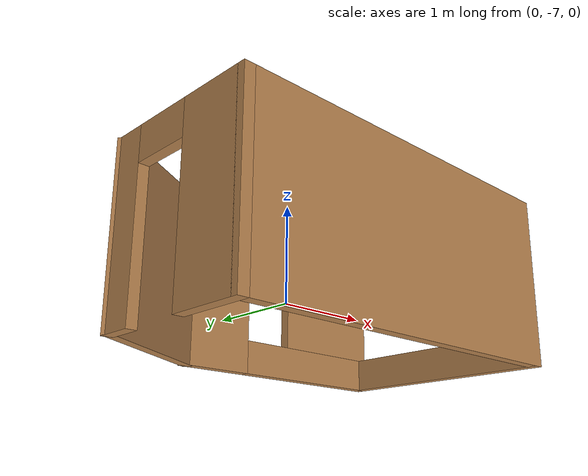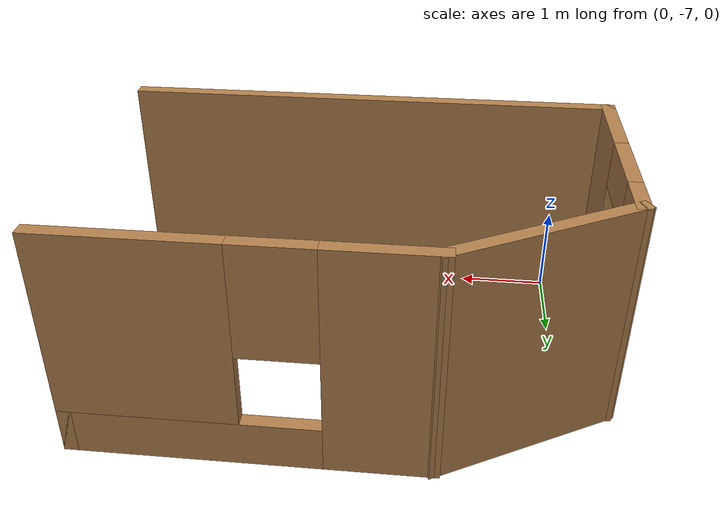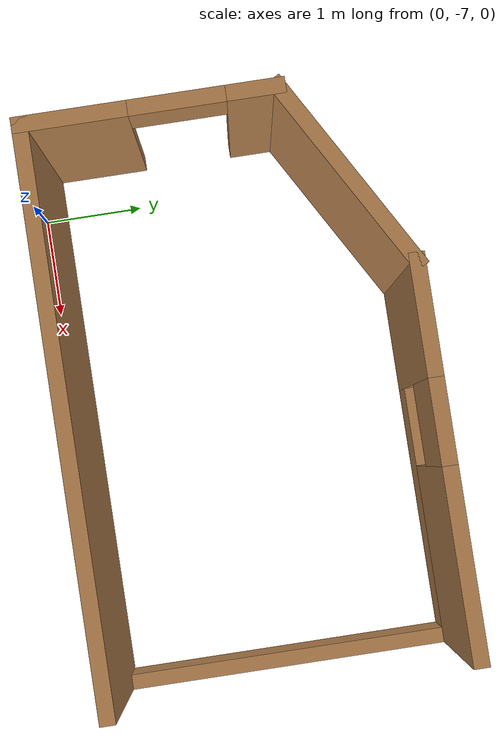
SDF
<?xml version='1.0'?>
<sdf version='1.7'>
  <model name='sample_world'>
    <pose>2.19134 -3.4625 0 0 -0 0</pose>
    <link name='Wall_5'>
      <pose>0.888664 -0.0375 0 0 -0 0</pose>
      <visual name='Wall_5_Visual_0'>
        <pose>-1.3075 0 1.25 0 -0 0</pose>
        <geometry>
          <box>
            <size>1.135 0.15 2.5</size>
          </box>
        </geometry>
        <material>
          <script>
            <uri>file://media/materials/scripts/gazebo.material</uri>
            <name>Gazebo/Wood</name>
          </script>
          <ambient>1 1 1 1</ambient>
        </material>
        <meta>
          <layer>0</layer>
        </meta>
      </visual>
      <collision name='Wall_5_Collision_0'>
        <geometry>
          <box>
            <size>1.135 0.15 2.5</size>
          </box>
        </geometry>
        <pose>-1.3075 0 1.25 0 -0 0</pose>
      </collision>
      <visual name='Wall_5_Visual_1'>
        <pose>0.5675 0 0.25 0 -0 0</pose>
        <geometry>
          <box>
            <size>2.615 0.15 0.5</size>
          </box>
        </geometry>
        <material>
          <script>
            <uri>file://media/materials/scripts/gazebo.material</uri>
            <name>Gazebo/Wood</name>
          </script>
          <ambient>1 1 1 1</ambient>
        </material>
        <meta>
          <layer>0</layer>
        </meta>
      </visual>
      <collision name='Wall_5_Collision_1'>
        <geometry>
          <box>
            <size>2.615 0.15 0.5</size>
          </box>
        </geometry>
        <pose>0.5675 0 0.25 0 -0 0</pose>
      </collision>
      <visual name='Wall_5_Visual_2'>
        <pose>0.9675 0 1.5 0 -0 0</pose>
        <geometry>
          <box>
            <size>1.815 0.15 2</size>
          </box>
        </geometry>
        <material>
          <script>
            <uri>file://media/materials/scripts/gazebo.material</uri>
            <name>Gazebo/Wood</name>
          </script>
          <ambient>1 1 1 1</ambient>
        </material>
        <meta>
          <layer>0</layer>
        </meta>
      </visual>
      <collision name='Wall_5_Collision_2'>
        <geometry>
          <box>
            <size>1.815 0.15 2</size>
          </box>
        </geometry>
        <pose>0.9675 0 1.5 0 -0 0</pose>
      </collision>
      <visual name='Wall_5_Visual_3'>
        <pose>-0.34 0 1.9 0 -0 0</pose>
        <geometry>
          <box>
            <size>0.8 0.15 1.2</size>
          </box>
        </geometry>
        <material>
          <script>
            <uri>file://media/materials/scripts/gazebo.material</uri>
            <name>Gazebo/Wood</name>
          </script>
          <ambient>1 1 1 1</ambient>
        </material>
        <meta>
          <layer>0</layer>
        </meta>
      </visual>
      <collision name='Wall_5_Collision_3'>
        <geometry>
          <box>
            <size>0.8 0.15 1.2</size>
          </box>
        </geometry>
        <pose>-0.34 0 1.9 0 -0 0</pose>
      </collision>
    </link>
    <link name='Wall_6'>
      <collision name='Wall_6_Collision'>
        <geometry>
          <box>
            <size>3.5 0.15 0.5</size>
          </box>
        </geometry>
        <pose>0 0 0.25 0 -0 0</pose>
      </collision>
      <visual name='Wall_6_Visual'>
        <pose>0 0 0.25 0 -0 0</pose>
        <geometry>
          <box>
            <size>3.5 0.15 0.5</size>
          </box>
        </geometry>
        <material>
          <script>
            <uri>file://media/materials/scripts/gazebo.material</uri>
            <name>Gazebo/Wood</name>
          </script>
          <ambient>1 1 1 1</ambient>
        </material>
        <meta>
          <layer>0</layer>
        </meta>
      </visual>
      <pose>2.68866 -1.7125 0 0 -0 -1.5708</pose>
    </link>
    <link name='Wall_7'>
      <collision name='Wall_7_Collision'>
        <geometry>
          <box>
            <size>5.5 0.15 2.5</size>
          </box>
        </geometry>
        <pose>0 0 1.25 0 -0 0</pose>
      </collision>
      <visual name='Wall_7_Visual'>
        <pose>0 0 1.25 0 -0 0</pose>
        <geometry>
          <box>
            <size>5.5 0.15 2.5</size>
          </box>
        </geometry>
        <material>
          <script>
            <uri>file://media/materials/scripts/gazebo.material</uri>
            <name>Gazebo/Wood</name>
          </script>
          <ambient>1 1 1 1</ambient>
        </material>
        <meta>
          <layer>0</layer>
        </meta>
      </visual>
      <pose>0.013664 -3.3875 0 0 -0 3.14159</pose>
    </link>
    <link name='Wall_8'>
      <pose>-2.66134 -2.2125 0 0 -0 1.5708</pose>
      <visual name='Wall_8_Visual_0'>
        <pose>-0.7225 0 1.25 0 -0 0</pose>
        <geometry>
          <box>
            <size>1.055 0.15 2.5</size>
          </box>
        </geometry>
        <material>
          <script>
            <uri>file://media/materials/scripts/gazebo.material</uri>
            <name>Gazebo/Wood</name>
          </script>
          <ambient>1 1 1 1</ambient>
        </material>
        <meta>
          <layer>0</layer>
        </meta>
      </visual>
      <collision name='Wall_8_Collision_0'>
        <geometry>
          <box>
            <size>1.055 0.15 2.5</size>
          </box>
        </geometry>
        <pose>-0.7225 0 1.25 0 -0 0</pose>
      </collision>
      <visual name='Wall_8_Visual_1'>
        <pose>0.9775 0 1.25 0 -0 0</pose>
        <geometry>
          <box>
            <size>0.545 0.15 2.5</size>
          </box>
        </geometry>
        <material>
          <script>
            <uri>file://media/materials/scripts/gazebo.material</uri>
            <name>Gazebo/Wood</name>
          </script>
          <ambient>1 1 1 1</ambient>
        </material>
        <meta>
          <layer>0</layer>
        </meta>
      </visual>
      <collision name='Wall_8_Collision_1'>
        <geometry>
          <box>
            <size>0.545 0.15 2.5</size>
          </box>
        </geometry>
        <pose>0.9775 0 1.25 0 -0 0</pose>
      </collision>
      <visual name='Wall_8_Visual_2'>
        <pose>0.255 0 2.25 0 -0 0</pose>
        <geometry>
          <box>
            <size>0.9 0.15 0.5</size>
          </box>
        </geometry>
        <material>
          <script>
            <uri>file://media/materials/scripts/gazebo.material</uri>
            <name>Gazebo/Wood</name>
          </script>
          <ambient>1 1 1 1</ambient>
        </material>
        <meta>
          <layer>0</layer>
        </meta>
      </visual>
      <collision name='Wall_8_Collision_2'>
        <geometry>
          <box>
            <size>0.9 0.15 0.5</size>
          </box>
        </geometry>
        <pose>0.255 0 2.25 0 -0 0</pose>
      </collision>
    </link>
    <link name='Wall_9'>
      <collision name='Wall_9_Collision'>
        <geometry>
          <box>
            <size>2.16556 0.15 2.5</size>
          </box>
        </geometry>
        <pose>0 0 1.25 0 -0 0</pose>
      </collision>
      <visual name='Wall_9_Visual'>
        <pose>0 0 1.25 0 -0 0</pose>
        <geometry>
          <box>
            <size>2.16556 0.15 2.5</size>
          </box>
        </geometry>
        <material>
          <script>
            <uri>file://media/materials/scripts/gazebo.material</uri>
            <name>Gazebo/Wood</name>
          </script>
          <ambient>1 1 1 1</ambient>
        </material>
        <meta>
          <layer>0</layer>
        </meta>
      </visual>
      <pose>-1.78634 -0.5375 0 0 -0 0.519146</pose>
    </link>
    <static>1</static>
  </model>
</sdf>
